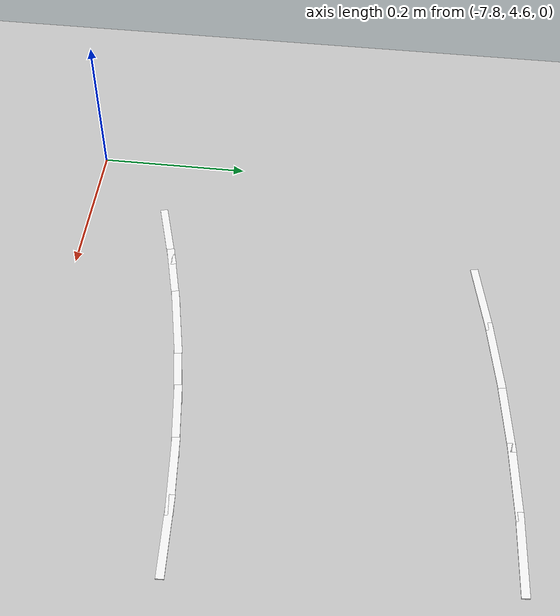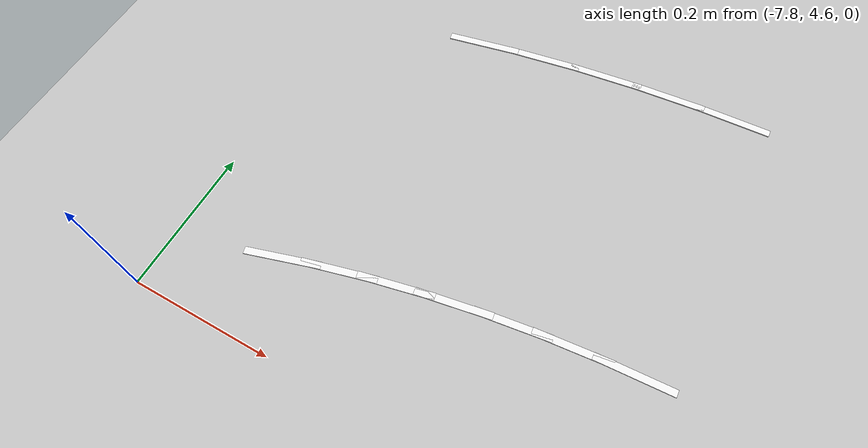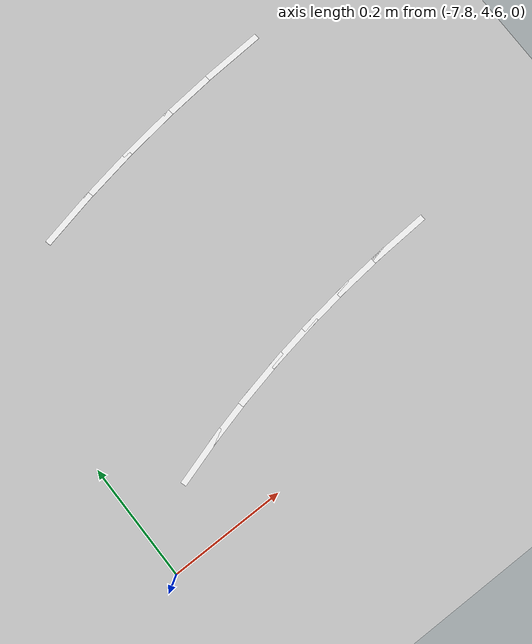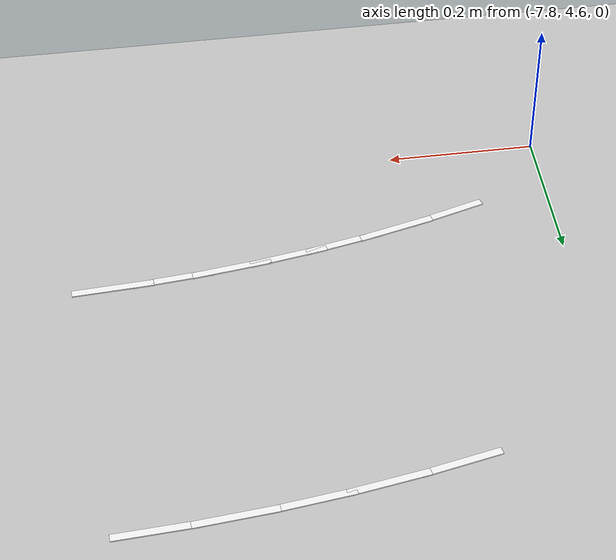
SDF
<sdf version="1.7">
 <world name="default">
  <model name="ground_plane">
   <static>1</static>
   <link name="link">
    <collision name="collision">
     <geometry><plane><normal>0 0 1</normal><size>100 100</size></plane></geometry>
     <surface>
      <contact><collide_bitmask>65535</collide_bitmask></contact>
      <friction><ode><mu>100</mu><mu2>50</mu2></ode></friction>
     </surface>
    </collision>
    <visual name="visual">
     <cast_shadows>0</cast_shadows>
     <geometry><plane><normal>0 0 1</normal><size>100 100</size></plane></geometry>
     <material>
      <script><uri>file://media/materials/scripts/gazebo.material</uri><name>Gazebo/Grey</name></script>
     </material>
    </visual>
   </link>
  </model>
  <model name="lane_line_left_313">
   <static>1</static>
   <link name="link">
    <pose>0 0 -0.004 0 -0 0</pose>
    <visual name="visual">
     <geometry><box><size>0.1073 0.01 0.01</size></box></geometry>
     <material><ambient>1 1 1 1</ambient><diffuse>1 1 1 1</diffuse></material>
    </visual>
    <collision name="collision"><geometry><box><size>0.1073 0.01 0.01</size></box></geometry></collision>
   </link>
   <pose>-7.20232 4.79577 0 0 0 -3.08258</pose>
  </model>
  <model name="lane_line_right_313">
   <static>1</static>
   <link name="link">
    <pose>0 0 -0.004 0 -0 0</pose>
    <visual name="visual">
     <geometry><box><size>0.1073 0.01 0.01</size></box></geometry>
     <material><ambient>1 1 1 1</ambient><diffuse>1 1 1 1</diffuse></material>
    </visual>
    <collision name="collision"><geometry><box><size>0.1073 0.01 0.01</size></box></geometry></collision>
   </link>
   <pose>-7.22591 5.19507 0 0 0 -3.08258</pose>
  </model>
  <model name="lane_line_left_314">
   <static>1</static>
   <link name="link">
    <pose>0 0 -0.004 0 -0 0</pose>
    <visual name="visual">
     <geometry><box><size>0.1064 0.01 0.01</size></box></geometry>
     <material><ambient>1 1 1 1</ambient><diffuse>1 1 1 1</diffuse></material>
    </visual>
    <collision name="collision"><geometry><box><size>0.1064 0.01 0.01</size></box></geometry></collision>
   </link>
   <pose>-7.28149 4.78961 0 0 0 -3.04523</pose>
  </model>
  <model name="lane_line_right_314">
   <static>1</static>
   <link name="link">
    <pose>0 0 -0.004 0 -0 0</pose>
    <visual name="visual">
     <geometry><box><size>0.1064 0.01 0.01</size></box></geometry>
     <material><ambient>1 1 1 1</ambient><diffuse>1 1 1 1</diffuse></material>
    </visual>
    <collision name="collision"><geometry><box><size>0.1064 0.01 0.01</size></box></geometry></collision>
   </link>
   <pose>-7.31998 5.18776 0 0 0 -3.04523</pose>
  </model>
  <model name="lane_line_left_315">
   <static>1</static>
   <link name="link">
    <pose>0 0 -0.004 0 -0 0</pose>
    <visual name="visual">
     <geometry><box><size>0.1057 0.01 0.01</size></box></geometry>
     <material><ambient>1 1 1 1</ambient><diffuse>1 1 1 1</diffuse></material>
    </visual>
    <collision name="collision"><geometry><box><size>0.1057 0.01 0.01</size></box></geometry></collision>
   </link>
   <pose>-7.3594 4.78059 0 0 0 -3.00718</pose>
  </model>
  <model name="lane_line_right_315">
   <static>1</static>
   <link name="link">
    <pose>0 0 -0.004 0 -0 0</pose>
    <visual name="visual">
     <geometry><box><size>0.1057 0.01 0.01</size></box></geometry>
     <material><ambient>1 1 1 1</ambient><diffuse>1 1 1 1</diffuse></material>
    </visual>
    <collision name="collision"><geometry><box><size>0.1057 0.01 0.01</size></box></geometry></collision>
   </link>
   <pose>-7.413 5.17698 0 0 0 -3.00718</pose>
  </model>
  <model name="lane_line_left_316">
   <static>1</static>
   <link name="link">
    <pose>0 0 -0.004 0 -0 0</pose>
    <visual name="visual">
     <geometry><box><size>0.105 0.01 0.01</size></box></geometry>
     <material><ambient>1 1 1 1</ambient><diffuse>1 1 1 1</diffuse></material>
    </visual>
    <collision name="collision"><geometry><box><size>0.105 0.01 0.01</size></box></geometry></collision>
   </link>
   <pose>-7.43605 4.76872 0 0 0 -2.96853</pose>
  </model>
  <model name="lane_line_right_316">
   <static>1</static>
   <link name="link">
    <pose>0 0 -0.004 0 -0 0</pose>
    <visual name="visual">
     <geometry><box><size>0.105 0.01 0.01</size></box></geometry>
     <material><ambient>1 1 1 1</ambient><diffuse>1 1 1 1</diffuse></material>
    </visual>
    <collision name="collision"><geometry><box><size>0.105 0.01 0.01</size></box></geometry></collision>
   </link>
   <pose>-7.50493 5.16274 0 0 0 -2.96853</pose>
  </model>
  <model name="lane_line_left_317">
   <static>1</static>
   <link name="link">
    <pose>0 0 -0.004 0 -0 0</pose>
    <visual name="visual">
     <geometry><box><size>0.1044 0.01 0.01</size></box></geometry>
     <material><ambient>1 1 1 1</ambient><diffuse>1 1 1 1</diffuse></material>
    </visual>
    <collision name="collision"><geometry><box><size>0.1044 0.01 0.01</size></box></geometry></collision>
   </link>
   <pose>-7.51147 4.75401 0 0 0 -2.92939</pose>
  </model>
  <model name="lane_line_right_317">
   <static>1</static>
   <link name="link">
    <pose>0 0 -0.004 0 -0 0</pose>
    <visual name="visual">
     <geometry><box><size>0.1044 0.01 0.01</size></box></geometry>
     <material><ambient>1 1 1 1</ambient><diffuse>1 1 1 1</diffuse></material>
    </visual>
    <collision name="collision"><geometry><box><size>0.1044 0.01 0.01</size></box></geometry></collision>
   </link>
   <pose>-7.59572 5.14504 0 0 0 -2.92939</pose>
  </model>
  <model name="lane_line_left_318">
   <static>1</static>
   <link name="link">
    <pose>0 0 -0.004 0 -0 0</pose>
    <visual name="visual">
     <geometry><box><size>0.104 0.01 0.01</size></box></geometry>
     <material><ambient>1 1 1 1</ambient><diffuse>1 1 1 1</diffuse></material>
    </visual>
    <collision name="collision"><geometry><box><size>0.104 0.01 0.01</size></box></geometry></collision>
   </link>
   <pose>-7.58569 4.73649 0 0 0 -2.88988</pose>
  </model>
  <model name="lane_line_left_319">
   <static>1</static>
   <link name="link">
    <pose>0 0 -0.004 0 -0 0</pose>
    <visual name="visual">
     <geometry><box><size>0.1036 0.01 0.01</size></box></geometry>
     <material><ambient>1 1 1 1</ambient><diffuse>1 1 1 1</diffuse></material>
    </visual>
    <collision name="collision"><geometry><box><size>0.1036 0.01 0.01</size></box></geometry></collision>
   </link>
   <pose>-7.65873 4.71615 0 0 0 -2.85011</pose>
  </model>
 </world>
</sdf>
